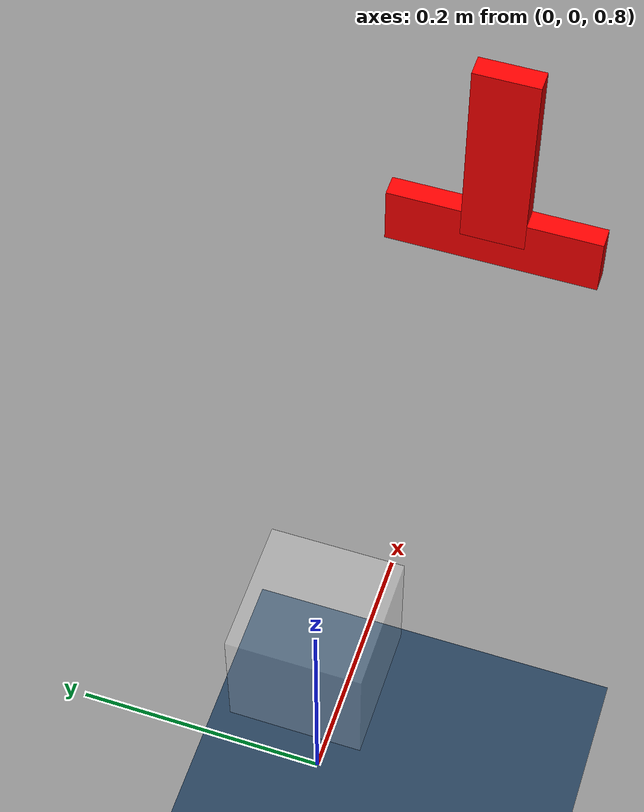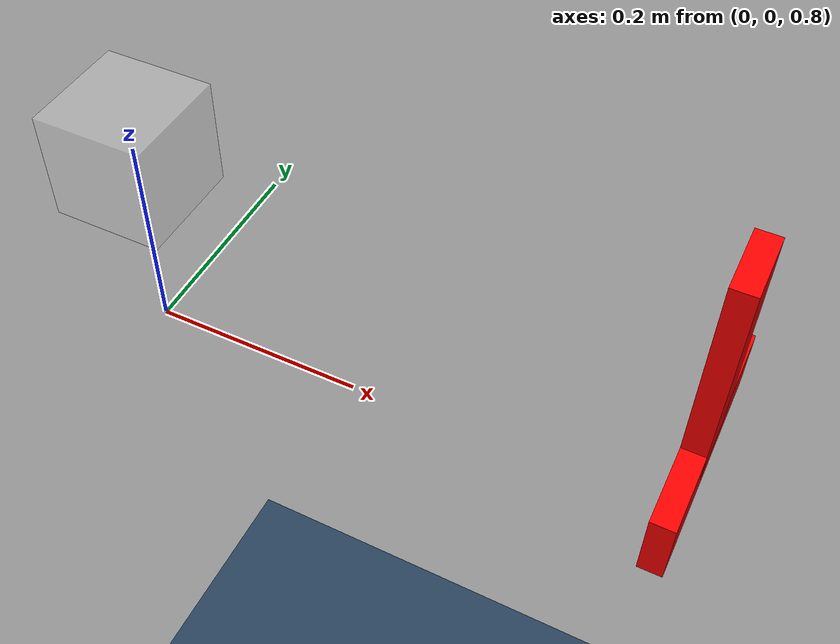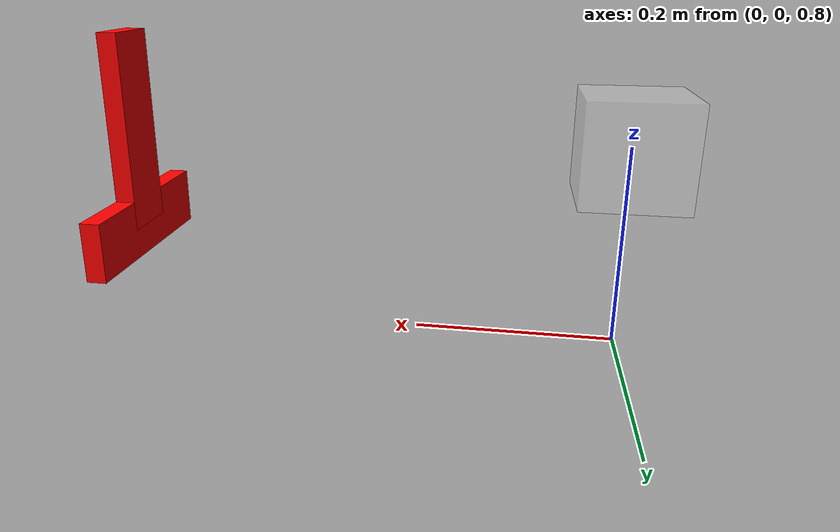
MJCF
<mujoco model="camera_env">
  <option integrator="RK4" solver="Newton" gravity="0 0 0"/>
  <compiler angle="radian" meshdir="../meshes" texturedir="../textures/"/>

  <visual>
    <global offwidth="1920" offheight="1080"/>
    <quality shadowsize="4096" offsamples="4"/>
    <headlight diffuse='0.6 0.6 0.6' ambient='.3 .3 .3' specular='0 0 0'/>
    <scale com="0.05" camera="0.06" framelength="0.5" framewidth="0.02" forcewidth="0.1" contactwidth="0.01" contactheight="0.05"/>
  </visual>

  <asset>
    <texture type='2d' name='groundplane' builtin='checker' mark='edge' rgb1='0.2 0.3 0.4' rgb2='0.1 0.2 0.3' markrgb='0.8 0.8 0.8' width='300' height='300'/>
    <material name='groundplane' texture='groundplane' texuniform='true' texrepeat='5 5' reflectance='0.2'/>
  </asset>

  <worldbody>
    <light castshadow="false" directional='true' diffuse='.3 .3 .3' specular='0.3 0.3 0.3' pos='-1 -1 1' dir='1 1 -1'/>
    <light directional='true' diffuse='.3 .3 .3' specular='0.3 0.3 0.3' pos='0 0 1' dir='-1 1 -1'/>
    <light castshadow="false" directional='true' diffuse='.3 .3 .3' specular='0.3 0.3 0.3' pos='0 1 1' dir='0 -1 -1'/>
    <geom name='floor' type='plane' size='0 0 0.01' material='groundplane' pos='0 0 0'/>

    <body name="base_body" pos="0 0 1">
      <inertial pos="0 0 0" mass="0.001" diaginertia="1e-5 1e-5 1e-5"/>
      <camera name='camera_' euler="0 -1.5708 -1.5708"/>
      <site name="camera_site" euler="0 1.5708 -1.5708" size='0.001' type='sphere'/>
      <geom type="box" size="0.05 0.05 0.05" rgba="1 1 1 0.2"/>
    </body>

    <geom type="box" pos="0.5 0 1" size="0.01 0.03 0.1" rgba="1 0 0 1"/>
    <geom type="box" pos="0.5 0 0.9" size="0.01 0.1 0.03" rgba="1 0 0 1"/>

  </worldbody>

</mujoco>
